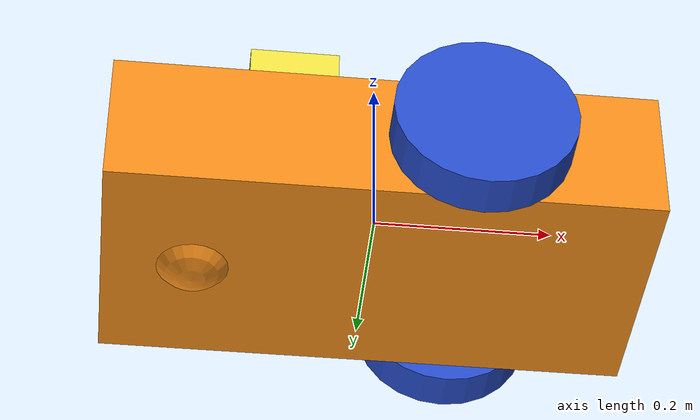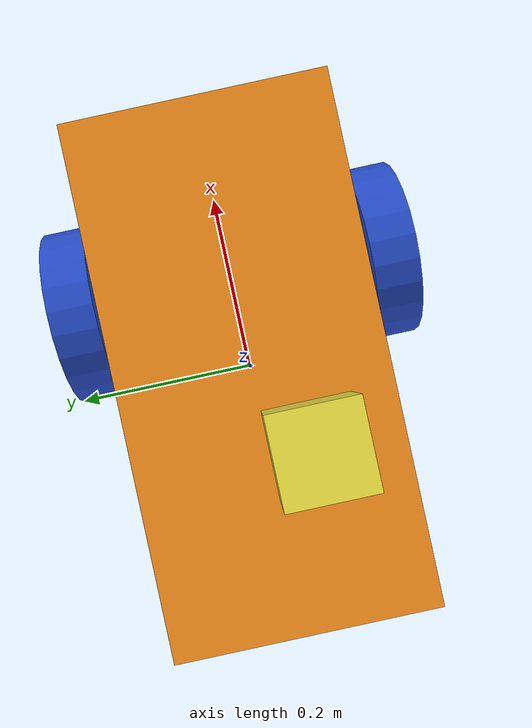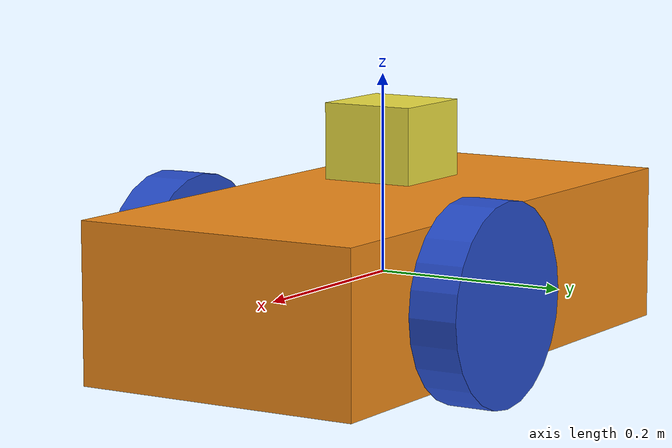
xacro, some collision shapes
<?xml version='1.0'?>

<robot name="myrobot" xmlns:xacro="http://www.ros.org/wiki/xacro">
<xacro:include filename="$(find mybot_description)/urdf/mybot.gazebo" />

<!-- +++++++++++++++++++++++Robot Definition+++++++++++++++++++++++++ /-->

<!--Chassis & Caster Link /-->

 <link name='chassis'>

   <visual name='chassis_visual'>

      <origin xyz="0 0 0" rpy=" 0 0 0"/>

      <geometry>
        <box size=".6 .3 .16"/>
      </geometry>

    </visual>

   <inertial>

      <mass value="10.0"/>
      <origin xyz="0 0 0" rpy=" 0 0 0"/>
      <inertia
          ixx="0.5" ixy="0" ixz="0"
          iyy="1.0" iyz="0"
          izz="0.1"
      />

   </inertial>

   <collision name='collision'>
      <geometry>
        <box size=".6 .3 .16"/>
      </geometry>
   </collision>

 <collision name='caster_collision'>
    <origin xyz="-0.2 0 -0.05" rpy=" 0 0 0"/>

    <geometry>
        <sphere radius="0.05"/>
    </geometry>

    <surface>

        <friction>
          <ode>
            <mu>0</mu>
            <mu2>0</mu2>
            <slip1>1.0</slip1>
            <slip2>1.0</slip2>
          </ode>
        </friction>

     </surface>

 </collision>

<visual name='caster_visual'>

     <origin xyz="-0.2 0 -0.05" rpy=" 0 0 0"/>

     <geometry>
      <sphere radius="0.05"/>
     </geometry>

</visual>

</link>

<!-- ++++++++++++++++Left wheel+++++++++++++++++++++++++++++++ /-->

<!--left wheel Joint /-->

  <joint type="continuous" name="left_wheel_hinge">
    <origin xyz="0.1 0.175 0" rpy="0 0 0"/>
    <child link="left_wheel"/>
    <parent link="chassis"/>
    <axis xyz="0 1 0" rpy="0 0 0"/>
    <limit effort="100" velocity="100"/>
    <joint_properties damping="0.0" friction="0.0"/>
  </joint>

<!--left wheel Link /-->

 <link name="left_wheel">

    <visual name="left_wheel_visual">
      <origin xyz="0 0 0" rpy="0 1.5707 1.5707"/>
      <geometry>
        <cylinder radius="0.1" length="0.05"/>
      </geometry>
    </visual>

    <collision name="collision">
      <origin xyz="0 0 0" rpy="0 1.5707 1.5707"/>
      <geometry>
        <cylinder radius="0.1" length="0.05"/>
      </geometry>
    </collision>

    <inertial>
      <origin xyz="0 0 0" rpy="0 1.5707 1.5707"/>
      <mass value="5"/>
      <cylinder_inertia m="5" r="0.1" h="0.05"/>
      <inertia
        ixx="1.0" ixy="0.0" ixz="0.0"
        iyy="1.0" iyz="0.0"
        izz="1.0"/>
    </inertial>

 </link>

<!-- +++++++++++++++++++ Right Wheel +++++++++++++++++++++++++++++++++ /-->

<!--Right wheel joint/-->
  <joint type="continuous" name="right_wheel_hinge">

    <origin xyz="0.1 -0.175 0" rpy="0 0 0"/>

    <child link="right_wheel"/>
    <parent link="chassis"/>

    <axis xyz="0 1 0" rpy="0 0 0"/>

    <limit effort="100" velocity="100"/>

    <joint_properties damping="0.0" friction="0.0"/>

  </joint>

<!--Right Wheel link /-->

  <link name="right_wheel">

    <visual name="right_wheel_visual">

      <origin xyz="0 0 0" rpy="0 1.5707 1.5707"/>

      <geometry>
        <cylinder radius="0.1" length="0.05"/>
      </geometry>

    </visual>

    <collision name="collision">

      <origin xyz="0 0 0" rpy="0 1.5707 1.5707"/>

      <geometry>
        <cylinder radius="0.1" length="0.05"/>
      </geometry>

    </collision>

    <inertial>

      <origin xyz="0 0 0" rpy="0 1.5707 1.5707"/>
      <mass value="5"/>
      <cylinder_inertia m="5" r="0.1" h="0.05"/>

      <inertia
        ixx="1.0" ixy="0.0" ixz="0.0"
        iyy="1.0" iyz="0.0"
        izz="1.0"/>
      </inertial>

  </link>

  <!-- *********************************gpu*******************  -->
  <joint name="hokuyo_joint" type="fixed">
    <axis xyz="0 1 0" />
    <origin xyz="-0.1 -0.05 0.11" rpy="0 0 0"/>
    <parent link="chassis"/>
    <child link="hokuyo_link"/>
  </joint>

  <!-- Hokuyo Laser -->
  <link name="hokuyo_link">
    <collision>
      <origin xyz="0 0 0" rpy="0 0 0"/>
      <geometry>
    <box size="0.1 0.1 0.1"/>
      </geometry>
    </collision>

    <visual>
      <origin xyz="0 0 0" rpy="0 0 0"/>
      <geometry>
        <mesh filename="package://mybot_description/meshes/hokuyo.dae"/>
      </geometry>
    </visual>

    <inertial>
      <mass value="5" />
      <origin xyz="0 0 0" rpy="0 0 0"/>
      <inertia ixx="1e-6" ixy="0" ixz="0" iyy="1e-6" iyz="0" izz="1e-6" />
    </inertial>
  </link>

</robot>
